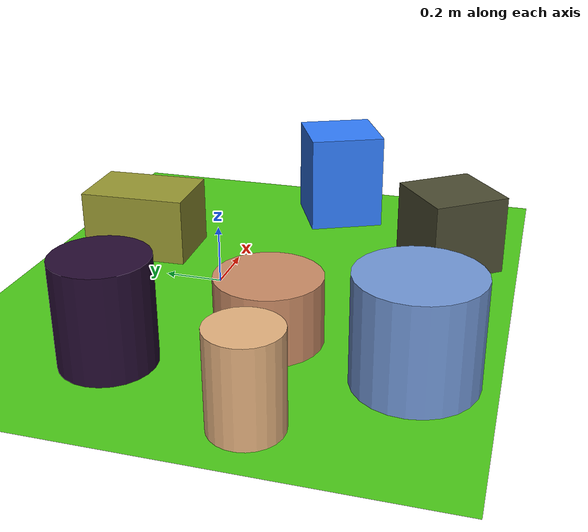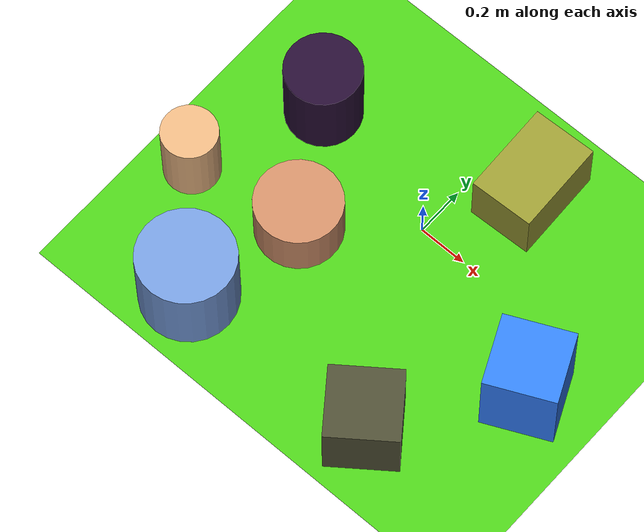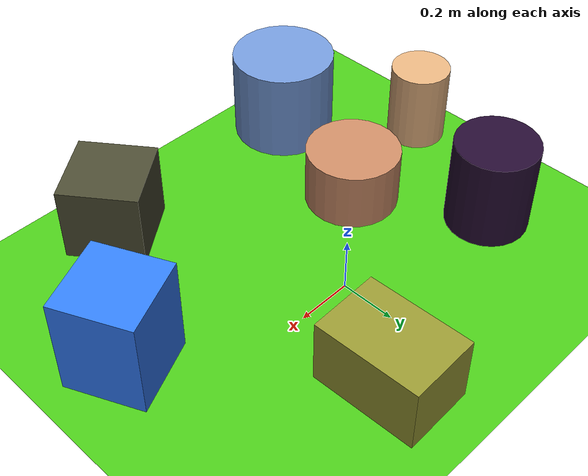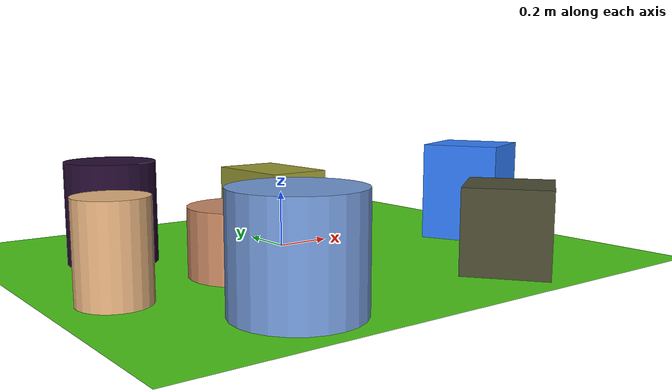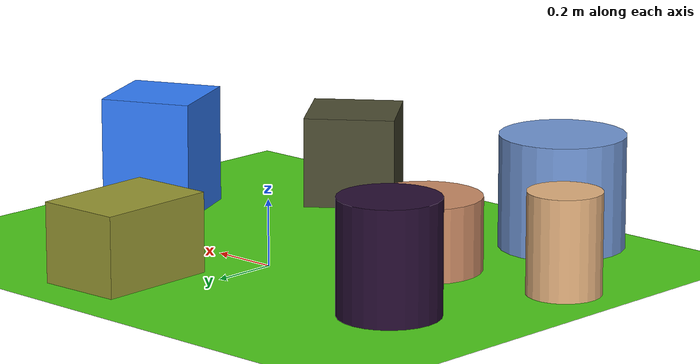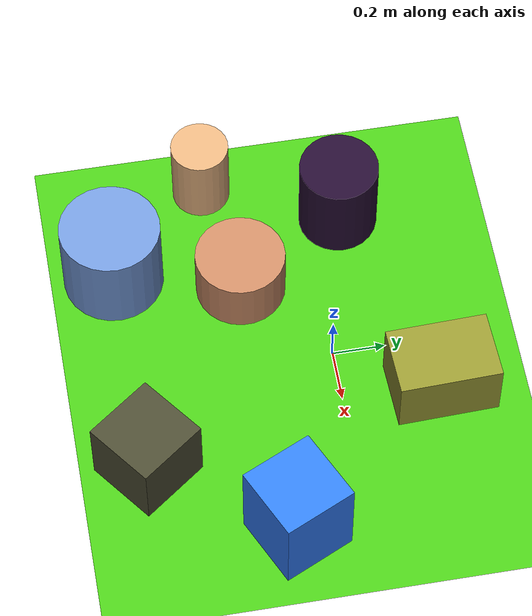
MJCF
<mujoco>
   <asset>
<texture type="skybox" builtin="gradient" rgb1="0.1 0.9 1.0" rgb2="0.0 0.9 0.1" width="500" height="500"/>
<texture name="checker_0" builtin="checker" rgb1="0.6 0.9 0.6" rgb2="1.0 0.2 0.2" width="500" height="500"/>
<texture name="flat_1" builtin="flat" rgb1="0.6 0.6 0.2" rgb2="0.6 0.6 0.2"  width="500" height="500"/>
<texture name="checker_2" builtin="checker" rgb1="0.0 0.1 0.0" rgb2="0.3 0.0 0.4" width="500" height="500"/>
<texture name="flat_3" builtin="flat" rgb1="0.9 0.7 0.5" rgb2="0.9 0.7 0.5"  width="500" height="500"/>
<texture name="flat_4" builtin="flat" rgb1="0.3 0.3 0.2" rgb2="0.3 0.3 0.2"  width="500" height="500"/>
<texture name="flat_5" builtin="flat" rgb1="0.2 0.5 1.0" rgb2="0.2 0.5 1.0"  width="500" height="500"/>
<texture name="gradient_6" builtin="gradient" rgb1="0.3 0.6 0.8" rgb2="0.6 0.6 0.9" width="500" height="500"/><material name="checker_0_mat" reflectance="0.028972800579131763" texrepeat="4 4" texture="checker_0" texuniform="false" />
<material name="flat_1_mat" reflectance="0.9719522835523933" texture="flat_1" texuniform="true"/>
<material name="checker_2_mat" reflectance="0.9262394248115163" texrepeat="5 5" texture="checker_2" texuniform="false" />
<material name="flat_3_mat" reflectance="0.2541455874943852" texture="flat_3" texuniform="true"/>
<material name="flat_4_mat" reflectance="0.08841883666339412" texture="flat_4" texuniform="true"/>
<material name="flat_5_mat" reflectance="0.2515176080186359" texture="flat_5" texuniform="true"/>
<material name="gradient_6_mat" reflectance="0.2527628332885059" texture="gradient_6" texuniform="true"/>
   </asset>

   <worldbody>
     <geom type="plane" size="1 1 0.1" rgba="0.3 0.8 0.1 1" />
<light pos="-0.30395609998269224 0.3589689535284215 2" dir="0 0 -1" cutoff="90" diffuse="1 1 1" specular="1 1 1"/>
<light pos="0.08805961462335299 0.7248160985208354 2" dir="0 0 -1" cutoff="90" diffuse="1 1 1" specular="1 1 1"/>
<geom type="cylinder" pos="-0.35 -0.29 0.11" size="0.17 0.11 0.11" material="checker_0_mat" euler="0 0 68" />
<geom type="box" pos="0.21 0.37 0.12" size="0.13 0.19 0.12" material="flat_1_mat" euler="0 0 2" />
<geom type="cylinder" pos="-0.6 0.13 0.17" size="0.15 0.17 0.17" material="checker_2_mat" euler="0 0 15" />
<geom type="cylinder" pos="-0.81 -0.37 0.15" size="0.11 0.15 0.15" material="flat_3_mat" euler="0 0 33" />
<geom type="box" pos="0.37 -0.75 0.14" size="0.14 0.14 0.14" material="flat_4_mat" euler="0 0 37" />
<geom type="box" pos="0.72 -0.26 0.18" size="0.14 0.14 0.18" material="flat_5_mat" euler="0 0 25" />
<geom type="cylinder" pos="-0.47 -0.76 0.17" size="0.19 0.17 0.17" material="gradient_6_mat" euler="0 0 77" /><camera euler="60 0 180" fovy="60" name="camera1" pos="-0.2 -1.5 1"></camera>   </worldbody>
   <visual>
      <headlight diffuse="0.7 0.7 0.7"/>
   </visual>
</mujoco>
